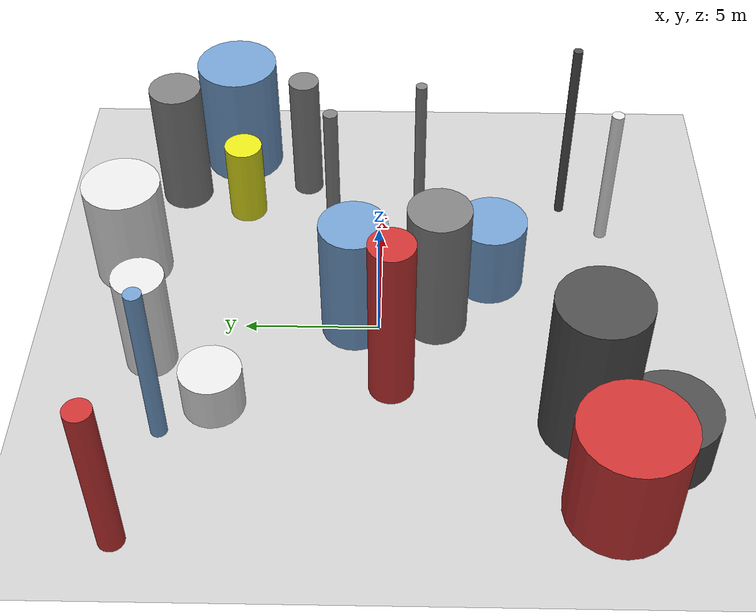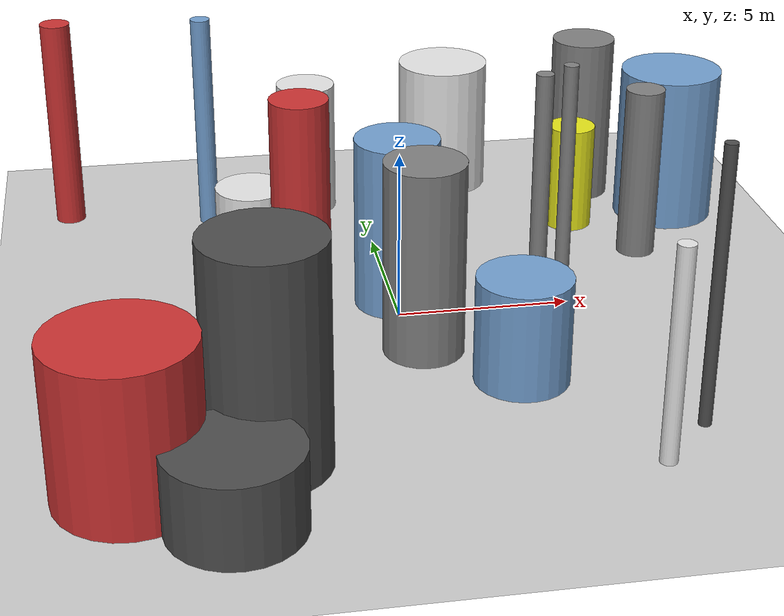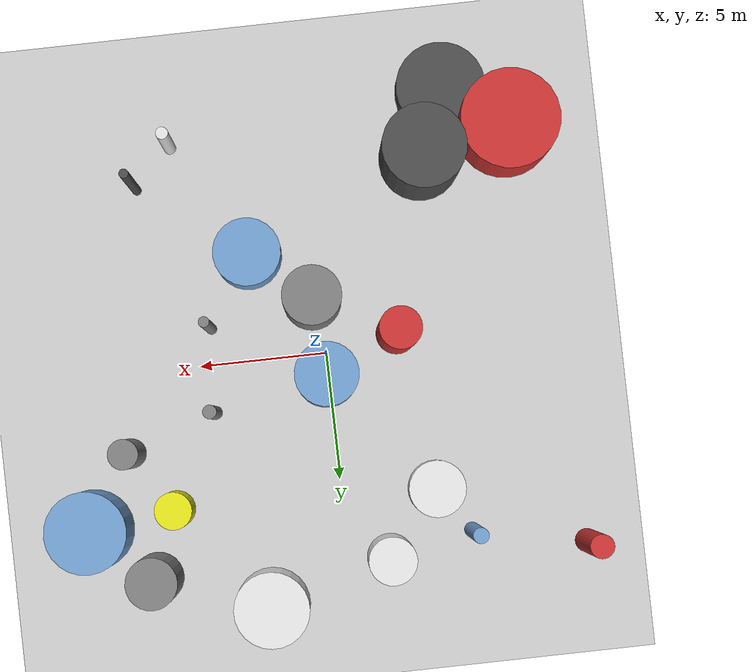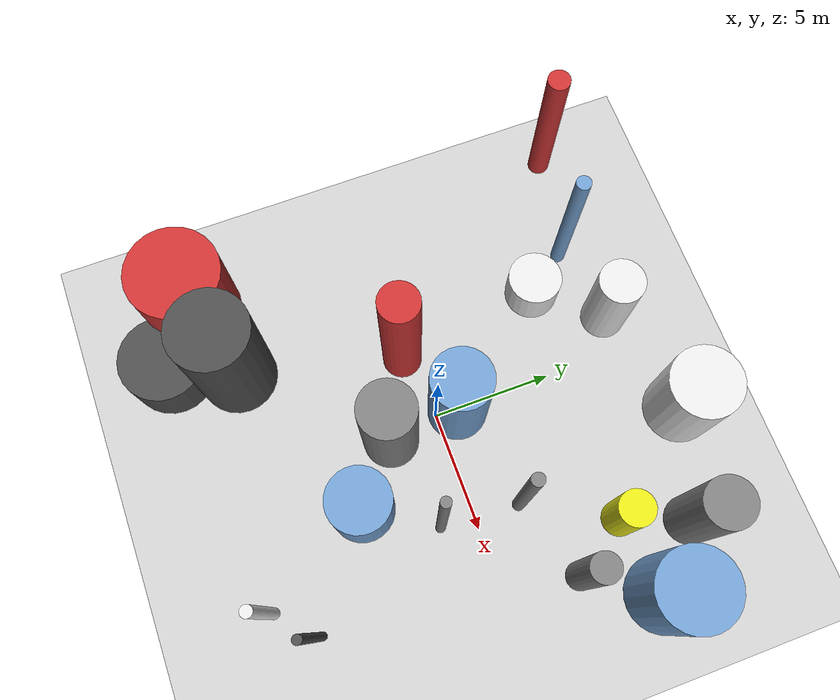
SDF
<?xml version='1.0'?>
<sdf version='1.6'>
  <world name='default'>
    <!-- Sun light -->
    <light name='sun' type='directional'>
      <cast_shadows>1</cast_shadows>
      <pose>0 0 10 0 0 0</pose>
      <diffuse>0.8 0.8 0.8 1</diffuse>
      <specular>0.2 0.2 0.2 1</specular>
      <attenuation>
        <range>1000</range>
        <constant>0.9</constant>
        <linear>0.01</linear>
        <quadratic>0.001</quadratic>
      </attenuation>
      <direction>-0.5 0.1 -0.9</direction>
    </light>

    <!-- Ground plane -->
    <model name='ground_plane'>
      <static>1</static>
      <link name='link'>
        <collision name='collision'>
          <geometry>
            <plane>
              <normal>0 0 1</normal>
              <size>100 100</size>
            </plane>
          </geometry>
          <surface>
            <contact>
              <collide_bitmask>65535</collide_bitmask>
              <ode/>
            </contact>
            <friction>
              <ode>
                <mu>100</mu>
                <mu2>50</mu2>
              </ode>
              <torsional><ode/></torsional>
            </friction>
            <bounce/>
          </surface>
          <max_contacts>10</max_contacts>
        </collision>
        <visual name='visual'>
          <cast_shadows>0</cast_shadows>
          <geometry>
            <plane>
              <normal>0 0 1</normal>
              <size>100 100</size>
            </plane>
          </geometry>
          <material>
            <script>
              <uri>file://media/materials/scripts/gazebo.material</uri>
              <n>Gazebo/Grey</n>
            </script>
          </material>
        </visual>
      </link>
    </model>

    <!-- Environment -->
    <magnetic_field>6e-06 2.3e-05 -4.2e-05</magnetic_field>
    <atmosphere type='adiabatic'/>
    <physics name='default_physics' default='0' type='ode'>
      <gravity>0 0 -9.8</gravity>
      <max_step_size>0.004</max_step_size>
      <real_time_factor>1</real_time_factor>
      <real_time_update_rate>250</real_time_update_rate>
    </physics>
    <scene>
      <ambient>0.4 0.4 0.4 1</ambient>
      <background>0.7 0.7 0.7 1</background>
      <shadows>1</shadows>
    </scene>
    <wind/>
    <spherical_coordinates>
      <surface_model>EARTH_WGS84</surface_model>
      <latitude_deg>0</latitude_deg>
      <longitude_deg>0</longitude_deg>
      <elevation>0</elevation>
      <heading_deg>0</heading_deg>
    </spherical_coordinates>

    <!-- ============ OBSTACLES (20) ============ -->
    <model name='obs_00'>
      <static>1</static>
      <link name='link'>
        <visual name='visual'>
          <geometry>
            <cylinder>
              <radius>1.4665</radius>
              <length>4.2686</length>
            </cylinder>
          </geometry>
          <material>
            <script>
              <n>Gazebo/White</n>
              <uri>file://media/materials/scripts/gazebo.material</uri>
            </script>
            <ambient>0.9 0.9 0.9 1</ambient>
          </material>
        </visual>
        <collision name='collision'>
          <geometry>
            <cylinder>
              <radius>1.4665</radius>
              <length>4.2686</length>
            </cylinder>
          </geometry>
          <max_contacts>10</max_contacts>
          <surface>
            <contact><ode/></contact>
            <bounce/>
            <friction>
              <ode><mu>1</mu><mu2>1</mu2></ode>
              <torsional><ode/></torsional>
            </friction>
          </surface>
        </collision>
      </link>
      <pose>3.1480 9.6454 2.1343 0 0 2.2706</pose>
    </model>

    <model name='obs_01'>
      <static>1</static>
      <link name='link'>
        <visual name='visual'>
          <geometry>
            <cylinder>
              <radius>0.2384</radius>
              <length>6.0127</length>
            </cylinder>
          </geometry>
          <material>
            <script>
              <n>Gazebo/White</n>
              <uri>file://media/materials/scripts/gazebo.material</uri>
            </script>
            <ambient>0.9 0.9 0.9 1</ambient>
          </material>
        </visual>
        <collision name='collision'>
          <geometry>
            <cylinder>
              <radius>0.2384</radius>
              <length>6.0127</length>
            </cylinder>
          </geometry>
          <max_contacts>10</max_contacts>
          <surface>
            <contact><ode/></contact>
            <bounce/>
            <friction>
              <ode><mu>1</mu><mu2>1</mu2></ode>
              <torsional><ode/></torsional>
            </friction>
          </surface>
        </collision>
      </link>
      <pose>5.2934 -8.7655 3.0063 0 0 0.2028</pose>
    </model>

    <model name='obs_02'>
      <static>1</static>
      <link name='link'>
        <visual name='visual'>
          <geometry>
            <cylinder>
              <radius>1.9353</radius>
              <length>4.3491</length>
            </cylinder>
          </geometry>
          <material>
            <script>
              <n>Gazebo/Red</n>
              <uri>file://media/materials/scripts/gazebo.material</uri>
            </script>
            <ambient>0.8 0.2 0.2 1</ambient>
          </material>
        </visual>
        <collision name='collision'>
          <geometry>
            <cylinder>
              <radius>1.9353</radius>
              <length>4.3491</length>
            </cylinder>
          </geometry>
          <max_contacts>10</max_contacts>
          <surface>
            <contact><ode/></contact>
            <bounce/>
            <friction>
              <ode><mu>1</mu><mu2>1</mu2></ode>
              <torsional><ode/></torsional>
            </friction>
          </surface>
        </collision>
      </link>
      <pose>-7.9803 -8.0873 2.1745 0 0 2.3853</pose>
    </model>

    <model name='obs_03'>
      <static>1</static>
      <link name='link'>
        <visual name='visual'>
          <geometry>
            <cylinder>
              <radius>1.6211</radius>
              <length>6.2496</length>
            </cylinder>
          </geometry>
          <material>
            <script>
              <n>Gazebo/DarkGrey</n>
              <uri>file://media/materials/scripts/gazebo.material</uri>
            </script>
            <ambient>0.3 0.3 0.3 1</ambient>
          </material>
        </visual>
        <collision name='collision'>
          <geometry>
            <cylinder>
              <radius>1.6211</radius>
              <length>6.2496</length>
            </cylinder>
          </geometry>
          <max_contacts>10</max_contacts>
          <surface>
            <contact><ode/></contact>
            <bounce/>
            <friction>
              <ode><mu>1</mu><mu2>1</mu2></ode>
              <torsional><ode/></torsional>
            </friction>
          </surface>
        </collision>
      </link>
      <pose>-4.5018 -7.2305 3.1248 0 0 0.2623</pose>
    </model>

    <model name='obs_04'>
      <static>1</static>
      <link name='link'>
        <visual name='visual'>
          <geometry>
            <cylinder>
              <radius>0.3028</radius>
              <length>6.8274</length>
            </cylinder>
          </geometry>
          <material>
            <script>
              <n>Gazebo/Blue</n>
              <uri>file://media/materials/scripts/gazebo.material</uri>
            </script>
            <ambient>0.447 0.624 0.812 1</ambient>
          </material>
        </visual>
        <collision name='collision'>
          <geometry>
            <cylinder>
              <radius>0.3028</radius>
              <length>6.8274</length>
            </cylinder>
          </geometry>
          <max_contacts>10</max_contacts>
          <surface>
            <contact><ode/></contact>
            <bounce/>
            <friction>
              <ode><mu>1</mu><mu2>1</mu2></ode>
              <torsional><ode/></torsional>
            </friction>
          </surface>
        </collision>
      </link>
      <pose>-4.9744 7.5682 3.4137 0 0 2.3519</pose>
    </model>

    <model name='obs_05'>
      <static>1</static>
      <link name='link'>
        <visual name='visual'>
          <geometry>
            <cylinder>
              <radius>0.2663</radius>
              <length>6.4791</length>
            </cylinder>
          </geometry>
          <material>
            <script>
              <n>Gazebo/Grey</n>
              <uri>file://media/materials/scripts/gazebo.material</uri>
            </script>
            <ambient>0.5 0.5 0.5 1</ambient>
          </material>
        </visual>
        <collision name='collision'>
          <geometry>
            <cylinder>
              <radius>0.2663</radius>
              <length>6.4791</length>
            </cylinder>
          </geometry>
          <max_contacts>10</max_contacts>
          <surface>
            <contact><ode/></contact>
            <bounce/>
            <friction>
              <ode><mu>1</mu><mu2>1</mu2></ode>
              <torsional><ode/></torsional>
            </friction>
          </surface>
        </collision>
      </link>
      <pose>4.6090 1.8801 3.2395 0 0 2.6779</pose>
    </model>

    <model name='obs_06'>
      <static>1</static>
      <link name='link'>
        <visual name='visual'>
          <geometry>
            <cylinder>
              <radius>0.8192</radius>
              <length>7.0376</length>
            </cylinder>
          </geometry>
          <material>
            <script>
              <n>Gazebo/Red</n>
              <uri>file://media/materials/scripts/gazebo.material</uri>
            </script>
            <ambient>0.8 0.2 0.2 1</ambient>
          </material>
        </visual>
        <collision name='collision'>
          <geometry>
            <cylinder>
              <radius>0.8192</radius>
              <length>7.0376</length>
            </cylinder>
          </geometry>
          <max_contacts>10</max_contacts>
          <surface>
            <contact><ode/></contact>
            <bounce/>
            <friction>
              <ode><mu>1</mu><mu2>1</mu2></ode>
              <torsional><ode/></torsional>
            </friction>
          </surface>
        </collision>
      </link>
      <pose>-2.8436 -0.4727 3.5188 0 0 1.4770</pose>
    </model>

    <model name='obs_07'>
      <static>1</static>
      <link name='link'>
        <visual name='visual'>
          <geometry>
            <cylinder>
              <radius>0.4618</radius>
              <length>6.6281</length>
            </cylinder>
          </geometry>
          <material>
            <script>
              <n>Gazebo/Red</n>
              <uri>file://media/materials/scripts/gazebo.material</uri>
            </script>
            <ambient>0.8 0.2 0.2 1</ambient>
          </material>
        </visual>
        <collision name='collision'>
          <geometry>
            <cylinder>
              <radius>0.4618</radius>
              <length>6.6281</length>
            </cylinder>
          </geometry>
          <max_contacts>10</max_contacts>
          <surface>
            <contact><ode/></contact>
            <bounce/>
            <friction>
              <ode><mu>1</mu><mu2>1</mu2></ode>
              <torsional><ode/></torsional>
            </friction>
          </surface>
        </collision>
      </link>
      <pose>-9.4388 8.4722 3.3140 0 0 1.9717</pose>
    </model>

    <model name='obs_08'>
      <static>1</static>
      <link name='link'>
        <visual name='visual'>
          <geometry>
            <cylinder>
              <radius>0.9372</radius>
              <length>4.2469</length>
            </cylinder>
          </geometry>
          <material>
            <script>
              <n>Gazebo/White</n>
              <uri>file://media/materials/scripts/gazebo.material</uri>
            </script>
            <ambient>0.9 0.9 0.9 1</ambient>
          </material>
        </visual>
        <collision name='collision'>
          <geometry>
            <cylinder>
              <radius>0.9372</radius>
              <length>4.2469</length>
            </cylinder>
          </geometry>
          <max_contacts>10</max_contacts>
          <surface>
            <contact><ode/></contact>
            <bounce/>
            <friction>
              <ode><mu>1</mu><mu2>1</mu2></ode>
              <torsional><ode/></torsional>
            </friction>
          </surface>
        </collision>
      </link>
      <pose>-1.6590 8.2858 2.1235 0 0 1.5554</pose>
    </model>

    <model name='obs_09'>
      <static>1</static>
      <link name='link'>
        <visual name='visual'>
          <geometry>
            <cylinder>
              <radius>0.7326</radius>
              <length>3.3677</length>
            </cylinder>
          </geometry>
          <material>
            <script>
              <n>Gazebo/Yellow</n>
              <uri>file://media/materials/scripts/gazebo.material</uri>
            </script>
            <ambient>0.9 0.9 0.1 1</ambient>
          </material>
        </visual>
        <collision name='collision'>
          <geometry>
            <cylinder>
              <radius>0.7326</radius>
              <length>3.3677</length>
            </cylinder>
          </geometry>
          <max_contacts>10</max_contacts>
          <surface>
            <contact><ode/></contact>
            <bounce/>
            <friction>
              <ode><mu>1</mu><mu2>1</mu2></ode>
              <torsional><ode/></torsional>
            </friction>
          </surface>
        </collision>
      </link>
      <pose>6.5332 5.4906 1.6838 0 0 1.7645</pose>
    </model>

    <model name='obs_10'>
      <static>1</static>
      <link name='link'>
        <visual name='visual'>
          <geometry>
            <cylinder>
              <radius>1.5843</radius>
              <length>4.9027</length>
            </cylinder>
          </geometry>
          <material>
            <script>
              <n>Gazebo/Blue</n>
              <uri>file://media/materials/scripts/gazebo.material</uri>
            </script>
            <ambient>0.447 0.624 0.812 1</ambient>
          </material>
        </visual>
        <collision name='collision'>
          <geometry>
            <cylinder>
              <radius>1.5843</radius>
              <length>4.9027</length>
            </cylinder>
          </geometry>
          <max_contacts>10</max_contacts>
          <surface>
            <contact><ode/></contact>
            <bounce/>
            <friction>
              <ode><mu>1</mu><mu2>1</mu2></ode>
              <torsional><ode/></torsional>
            </friction>
          </surface>
        </collision>
      </link>
      <pose>9.8634 5.9422 2.4513 0 0 2.1143</pose>
    </model>

    <model name='obs_11'>
      <static>1</static>
      <link name='link'>
        <visual name='visual'>
          <geometry>
            <cylinder>
              <radius>1.1203</radius>
              <length>1.8468</length>
            </cylinder>
          </geometry>
          <material>
            <script>
              <n>Gazebo/White</n>
              <uri>file://media/materials/scripts/gazebo.material</uri>
            </script>
            <ambient>0.9 0.9 0.9 1</ambient>
          </material>
        </visual>
        <collision name='collision'>
          <geometry>
            <cylinder>
              <radius>1.1203</radius>
              <length>1.8468</length>
            </cylinder>
          </geometry>
          <max_contacts>10</max_contacts>
          <surface>
            <contact><ode/></contact>
            <bounce/>
            <friction>
              <ode><mu>1</mu><mu2>1</mu2></ode>
              <torsional><ode/></torsional>
            </friction>
          </surface>
        </collision>
      </link>
      <pose>-3.7352 5.7810 0.9234 0 0 1.2290</pose>
    </model>

    <model name='obs_12'>
      <static>1</static>
      <link name='link'>
        <visual name='visual'>
          <geometry>
            <cylinder>
              <radius>1.1518</radius>
              <length>5.6792</length>
            </cylinder>
          </geometry>
          <material>
            <script>
              <n>Gazebo/Grey</n>
              <uri>file://media/materials/scripts/gazebo.material</uri>
            </script>
            <ambient>0.5 0.5 0.5 1</ambient>
          </material>
        </visual>
        <collision name='collision'>
          <geometry>
            <cylinder>
              <radius>1.1518</radius>
              <length>5.6792</length>
            </cylinder>
          </geometry>
          <max_contacts>10</max_contacts>
          <surface>
            <contact><ode/></contact>
            <bounce/>
            <friction>
              <ode><mu>1</mu><mu2>1</mu2></ode>
              <torsional><ode/></torsional>
            </friction>
          </surface>
        </collision>
      </link>
      <pose>0.3352 -2.1039 2.8396 0 0 2.5236</pose>
    </model>

    <model name='obs_13'>
      <static>1</static>
      <link name='link'>
        <visual name='visual'>
          <geometry>
            <cylinder>
              <radius>1.0013</radius>
              <length>5.3560</length>
            </cylinder>
          </geometry>
          <material>
            <script>
              <n>Gazebo/Grey</n>
              <uri>file://media/materials/scripts/gazebo.material</uri>
            </script>
            <ambient>0.5 0.5 0.5 1</ambient>
          </material>
        </visual>
        <collision name='collision'>
          <geometry>
            <cylinder>
              <radius>1.0013</radius>
              <length>5.3560</length>
            </cylinder>
          </geometry>
          <max_contacts>10</max_contacts>
          <surface>
            <contact><ode/></contact>
            <bounce/>
            <friction>
              <ode><mu>1</mu><mu2>1</mu2></ode>
              <torsional><ode/></torsional>
            </friction>
          </surface>
        </collision>
      </link>
      <pose>7.5423 8.0989 2.6780 0 0 2.6076</pose>
    </model>

    <model name='obs_14'>
      <static>1</static>
      <link name='link'>
        <visual name='visual'>
          <geometry>
            <cylinder>
              <radius>1.2430</radius>
              <length>5.1614</length>
            </cylinder>
          </geometry>
          <material>
            <script>
              <n>Gazebo/Blue</n>
              <uri>file://media/materials/scripts/gazebo.material</uri>
            </script>
            <ambient>0.447 0.624 0.812 1</ambient>
          </material>
        </visual>
        <collision name='collision'>
          <geometry>
            <cylinder>
              <radius>1.2430</radius>
              <length>5.1614</length>
            </cylinder>
          </geometry>
          <max_contacts>10</max_contacts>
          <surface>
            <contact><ode/></contact>
            <bounce/>
            <friction>
              <ode><mu>1</mu><mu2>1</mu2></ode>
              <torsional><ode/></torsional>
            </friction>
          </surface>
        </collision>
      </link>
      <pose>0.0909 0.9114 2.5807 0 0 2.1377</pose>
    </model>

    <model name='obs_15'>
      <static>1</static>
      <link name='link'>
        <visual name='visual'>
          <geometry>
            <cylinder>
              <radius>0.1779</radius>
              <length>7.8295</length>
            </cylinder>
          </geometry>
          <material>
            <script>
              <n>Gazebo/DarkGrey</n>
              <uri>file://media/materials/scripts/gazebo.material</uri>
            </script>
            <ambient>0.3 0.3 0.3 1</ambient>
          </material>
        </visual>
        <collision name='collision'>
          <geometry>
            <cylinder>
              <radius>0.1779</radius>
              <length>7.8295</length>
            </cylinder>
          </geometry>
          <max_contacts>10</max_contacts>
          <surface>
            <contact><ode/></contact>
            <bounce/>
            <friction>
              <ode><mu>1</mu><mu2>1</mu2></ode>
              <torsional><ode/></torsional>
            </friction>
          </surface>
        </collision>
      </link>
      <pose>6.7731 -7.2261 3.9148 0 0 1.3598</pose>
    </model>

    <model name='obs_16'>
      <static>1</static>
      <link name='link'>
        <visual name='visual'>
          <geometry>
            <cylinder>
              <radius>0.2046</radius>
              <length>7.9106</length>
            </cylinder>
          </geometry>
          <material>
            <script>
              <n>Gazebo/Grey</n>
              <uri>file://media/materials/scripts/gazebo.material</uri>
            </script>
            <ambient>0.5 0.5 0.5 1</ambient>
          </material>
        </visual>
        <collision name='collision'>
          <geometry>
            <cylinder>
              <radius>0.2046</radius>
              <length>7.9106</length>
            </cylinder>
          </geometry>
          <max_contacts>10</max_contacts>
          <surface>
            <contact><ode/></contact>
            <bounce/>
            <friction>
              <ode><mu>1</mu><mu2>1</mu2></ode>
              <torsional><ode/></torsional>
            </friction>
          </surface>
        </collision>
      </link>
      <pose>4.4118 -1.4340 3.9553 0 0 0.7882</pose>
    </model>

    <model name='obs_17'>
      <static>1</static>
      <link name='link'>
        <visual name='visual'>
          <geometry>
            <cylinder>
              <radius>1.3258</radius>
              <length>3.0745</length>
            </cylinder>
          </geometry>
          <material>
            <script>
              <n>Gazebo/Blue</n>
              <uri>file://media/materials/scripts/gazebo.material</uri>
            </script>
            <ambient>0.447 0.624 0.812 1</ambient>
          </material>
        </visual>
        <collision name='collision'>
          <geometry>
            <cylinder>
              <radius>1.3258</radius>
              <length>3.0745</length>
            </cylinder>
          </geometry>
          <max_contacts>10</max_contacts>
          <surface>
            <contact><ode/></contact>
            <bounce/>
            <friction>
              <ode><mu>1</mu><mu2>1</mu2></ode>
              <torsional><ode/></torsional>
            </friction>
          </surface>
        </collision>
      </link>
      <pose>2.6562 -4.1528 1.5372 0 0 1.8950</pose>
    </model>

    <model name='obs_18'>
      <static>1</static>
      <link name='link'>
        <visual name='visual'>
          <geometry>
            <cylinder>
              <radius>0.5867</radius>
              <length>5.3562</length>
            </cylinder>
          </geometry>
          <material>
            <script>
              <n>Gazebo/Grey</n>
              <uri>file://media/materials/scripts/gazebo.material</uri>
            </script>
            <ambient>0.5 0.5 0.5 1</ambient>
          </material>
        </visual>
        <collision name='collision'>
          <geometry>
            <cylinder>
              <radius>0.5867</radius>
              <length>5.3562</length>
            </cylinder>
          </geometry>
          <max_contacts>10</max_contacts>
          <surface>
            <contact><ode/></contact>
            <bounce/>
            <friction>
              <ode><mu>1</mu><mu2>1</mu2></ode>
              <torsional><ode/></torsional>
            </friction>
          </surface>
        </collision>
      </link>
      <pose>8.0913 3.1183 2.6781 0 0 2.8686</pose>
    </model>

    <model name='obs_19'>
      <static>1</static>
      <link name='link'>
        <visual name='visual'>
          <geometry>
            <cylinder>
              <radius>1.7540</radius>
              <length>2.2143</length>
            </cylinder>
          </geometry>
          <material>
            <script>
              <n>Gazebo/DarkGrey</n>
              <uri>file://media/materials/scripts/gazebo.material</uri>
            </script>
            <ambient>0.3 0.3 0.3 1</ambient>
          </material>
        </visual>
        <collision name='collision'>
          <geometry>
            <cylinder>
              <radius>1.7540</radius>
              <length>2.2143</length>
            </cylinder>
          </geometry>
          <max_contacts>10</max_contacts>
          <surface>
            <contact><ode/></contact>
            <bounce/>
            <friction>
              <ode><mu>1</mu><mu2>1</mu2></ode>
              <torsional><ode/></torsional>
            </friction>
          </surface>
        </collision>
      </link>
      <pose>-5.5510 -9.8002 1.1071 0 0 2.3743</pose>
    </model>

    <!-- GUI camera -->
    <gui fullscreen='0'>
      <camera name='user_camera'>
        <pose>-15 0 18 0 0.85 0.15</pose>
        <view_controller>orbit</view_controller>
        <projection_type>perspective</projection_type>
      </camera>
    </gui>
  </world>
</sdf>
